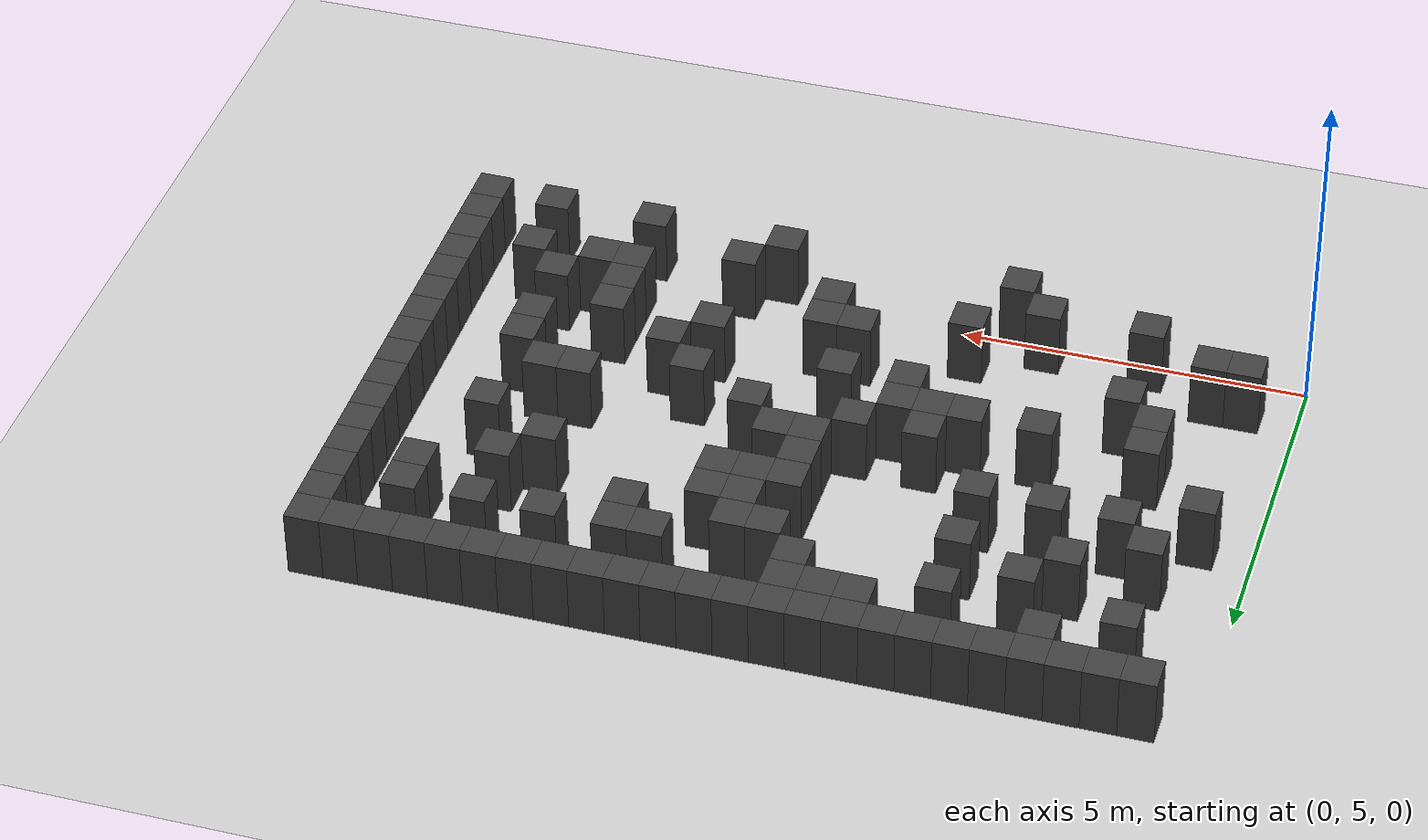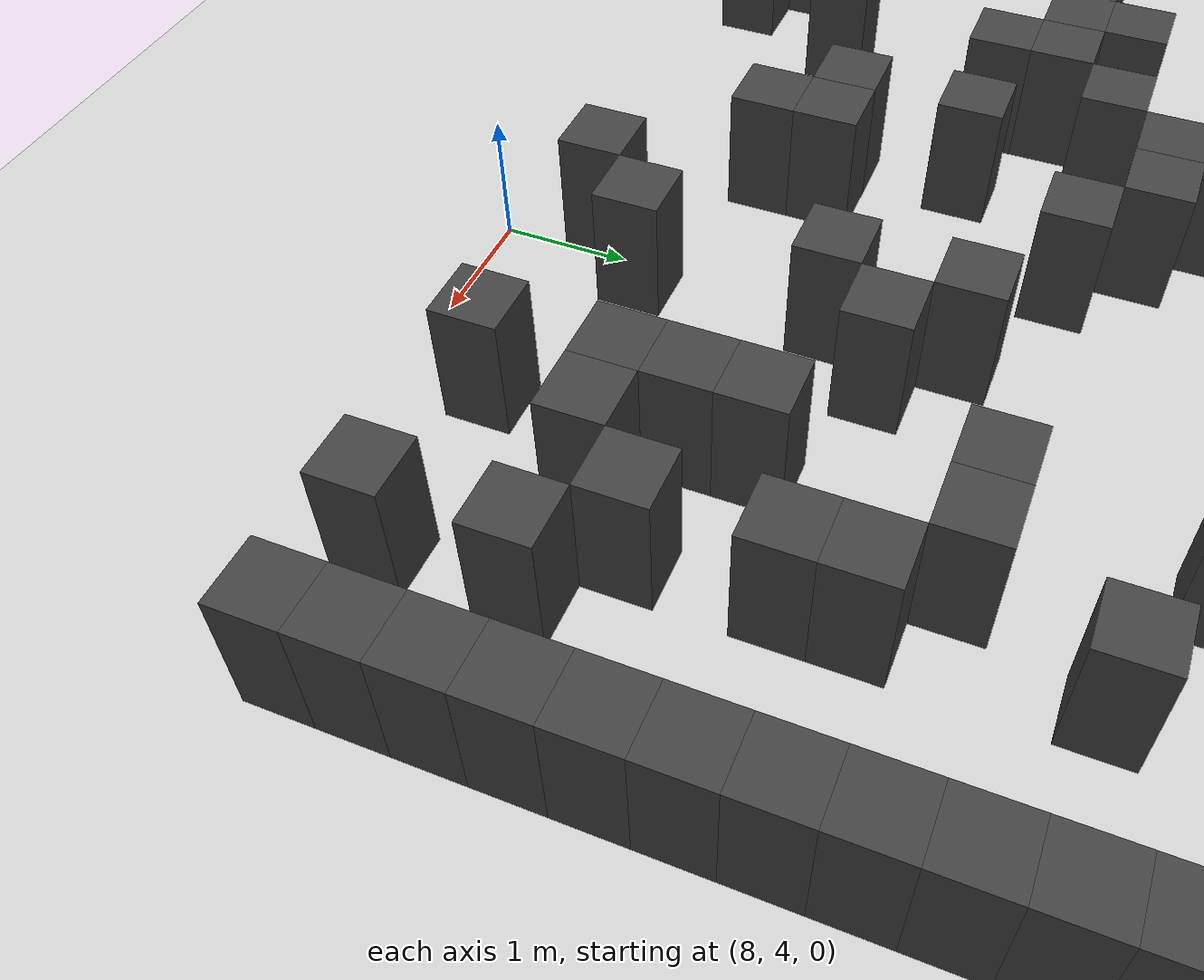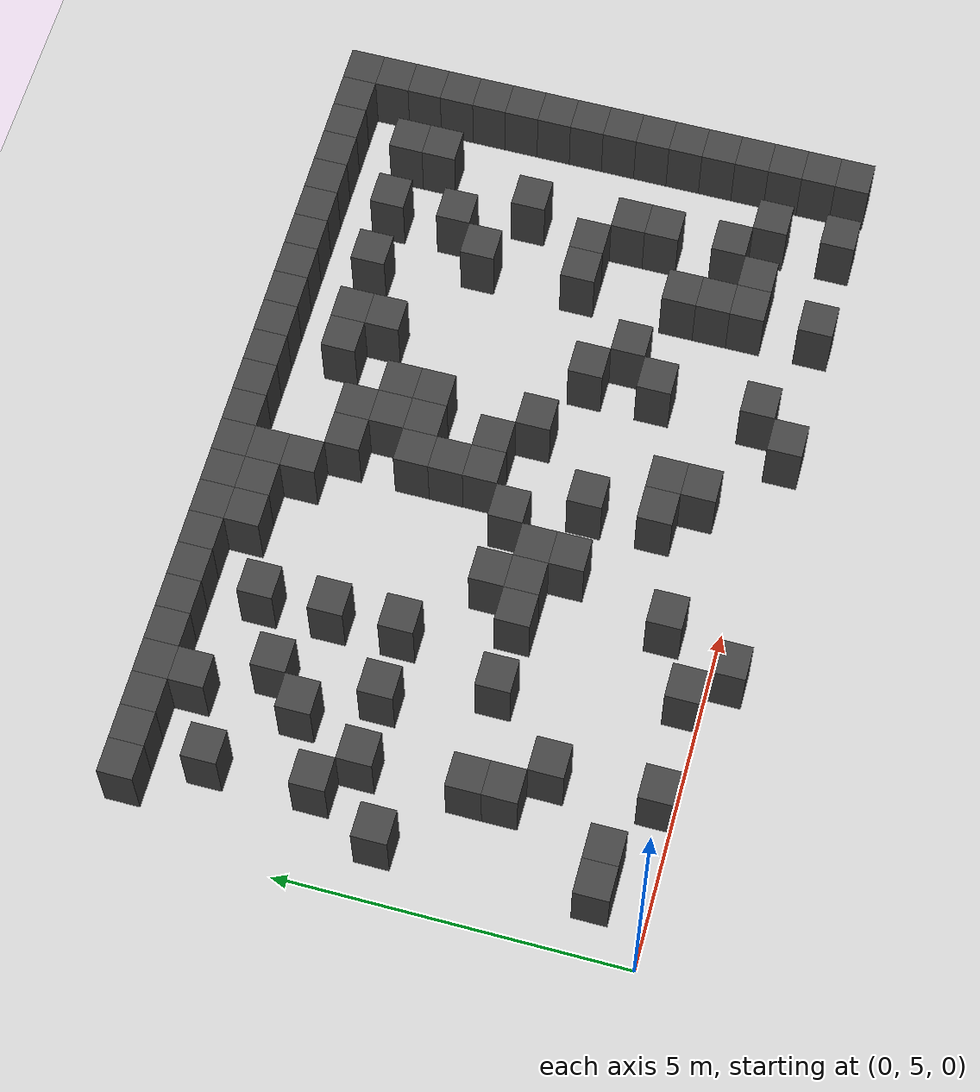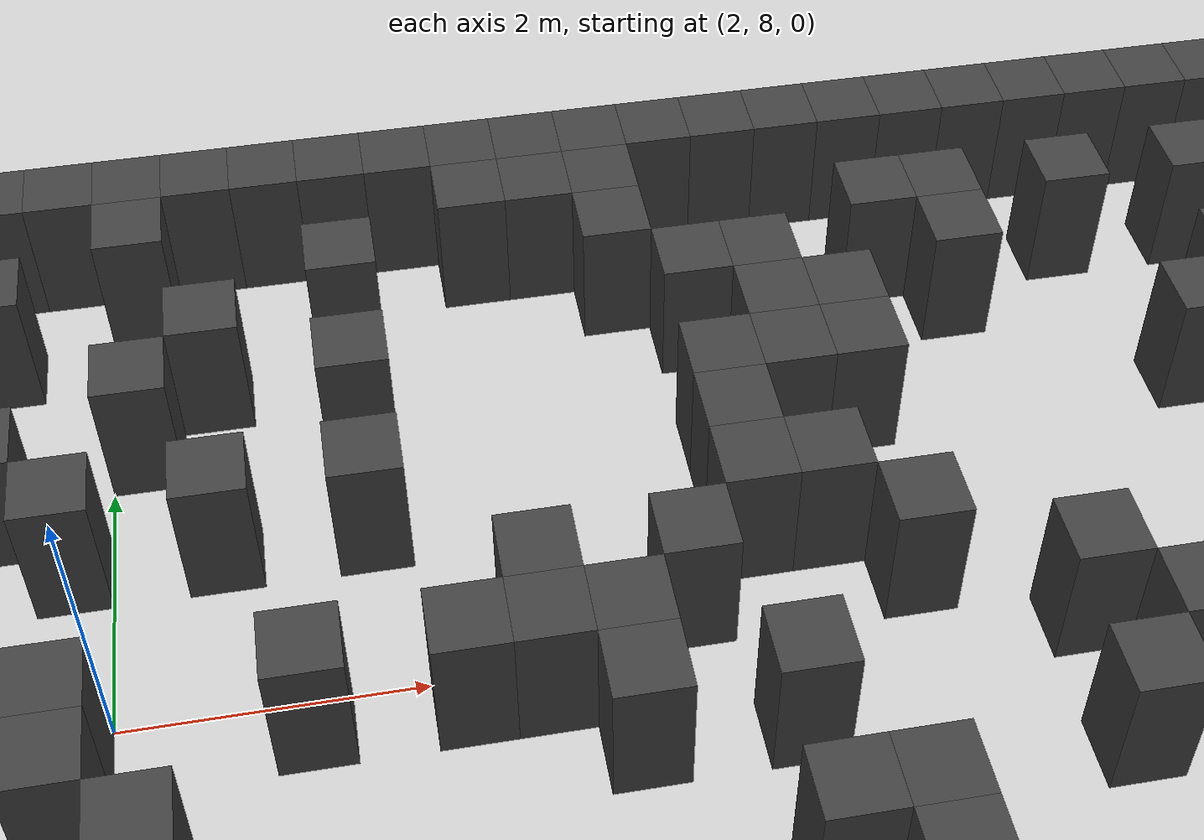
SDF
<sdf version="1.7">
 <world name="map_4226">
  <model name="ground_plane">
   <static>true</static>
   <link name="link">
    <collision name="collision">
     <geometry><plane><normal>0 0 1</normal><size>200 200</size></plane></geometry>
    </collision>
    <visual name="visual">
     <geometry><plane><normal>0 0 1</normal><size>200 200</size></plane></geometry>
     <material><ambient>0.8 0.8 0.8 1</ambient><diffuse>0.8 0.8 0.8 1</diffuse></material>
    </visual>
   </link>
  </model>
  <model name="maze_environment">
   <static>true</static>
   <link name="wall_26">
    <pose>0.750 12.250 0.500 0 0 0</pose>
    <collision name="col"><geometry><box><size>0.5 0.5 1.0</size></box></geometry></collision>
    <visual name="vis">
     <geometry><box><size>0.5 0.5 1.0</size></box></geometry>
     <material><ambient>0.15 0.15 0.15 1</ambient><diffuse>0.25 0.25 0.25 1</diffuse></material>
    </visual>
   </link>
   <link name="wall_27">
    <pose>1.250 12.250 0.500 0 0 0</pose>
    <collision name="col"><geometry><box><size>0.5 0.5 1.0</size></box></geometry></collision>
    <visual name="vis">
     <geometry><box><size>0.5 0.5 1.0</size></box></geometry>
     <material><ambient>0.15 0.15 0.15 1</ambient><diffuse>0.25 0.25 0.25 1</diffuse></material>
    </visual>
   </link>
   <link name="wall_28">
    <pose>1.750 12.250 0.500 0 0 0</pose>
    <collision name="col"><geometry><box><size>0.5 0.5 1.0</size></box></geometry></collision>
    <visual name="vis">
     <geometry><box><size>0.5 0.5 1.0</size></box></geometry>
     <material><ambient>0.15 0.15 0.15 1</ambient><diffuse>0.25 0.25 0.25 1</diffuse></material>
    </visual>
   </link>
   <link name="wall_29">
    <pose>2.250 12.250 0.500 0 0 0</pose>
    <collision name="col"><geometry><box><size>0.5 0.5 1.0</size></box></geometry></collision>
    <visual name="vis">
     <geometry><box><size>0.5 0.5 1.0</size></box></geometry>
     <material><ambient>0.15 0.15 0.15 1</ambient><diffuse>0.25 0.25 0.25 1</diffuse></material>
    </visual>
   </link>
   <link name="wall_30">
    <pose>2.750 12.250 0.500 0 0 0</pose>
    <collision name="col"><geometry><box><size>0.5 0.5 1.0</size></box></geometry></collision>
    <visual name="vis">
     <geometry><box><size>0.5 0.5 1.0</size></box></geometry>
     <material><ambient>0.15 0.15 0.15 1</ambient><diffuse>0.25 0.25 0.25 1</diffuse></material>
    </visual>
   </link>
   <link name="wall_31">
    <pose>3.250 12.250 0.500 0 0 0</pose>
    <collision name="col"><geometry><box><size>0.5 0.5 1.0</size></box></geometry></collision>
    <visual name="vis">
     <geometry><box><size>0.5 0.5 1.0</size></box></geometry>
     <material><ambient>0.15 0.15 0.15 1</ambient><diffuse>0.25 0.25 0.25 1</diffuse></material>
    </visual>
   </link>
   <link name="wall_32">
    <pose>3.750 12.250 0.500 0 0 0</pose>
    <collision name="col"><geometry><box><size>0.5 0.5 1.0</size></box></geometry></collision>
    <visual name="vis">
     <geometry><box><size>0.5 0.5 1.0</size></box></geometry>
     <material><ambient>0.15 0.15 0.15 1</ambient><diffuse>0.25 0.25 0.25 1</diffuse></material>
    </visual>
   </link>
   <link name="wall_33">
    <pose>4.250 12.250 0.500 0 0 0</pose>
    <collision name="col"><geometry><box><size>0.5 0.5 1.0</size></box></geometry></collision>
    <visual name="vis">
     <geometry><box><size>0.5 0.5 1.0</size></box></geometry>
     <material><ambient>0.15 0.15 0.15 1</ambient><diffuse>0.25 0.25 0.25 1</diffuse></material>
    </visual>
   </link>
   <link name="wall_34">
    <pose>4.750 12.250 0.500 0 0 0</pose>
    <collision name="col"><geometry><box><size>0.5 0.5 1.0</size></box></geometry></collision>
    <visual name="vis">
     <geometry><box><size>0.5 0.5 1.0</size></box></geometry>
     <material><ambient>0.15 0.15 0.15 1</ambient><diffuse>0.25 0.25 0.25 1</diffuse></material>
    </visual>
   </link>
   <link name="wall_35">
    <pose>5.250 12.250 0.500 0 0 0</pose>
    <collision name="col"><geometry><box><size>0.5 0.5 1.0</size></box></geometry></collision>
    <visual name="vis">
     <geometry><box><size>0.5 0.5 1.0</size></box></geometry>
     <material><ambient>0.15 0.15 0.15 1</ambient><diffuse>0.25 0.25 0.25 1</diffuse></material>
    </visual>
   </link>
   <link name="wall_36">
    <pose>5.750 12.250 0.500 0 0 0</pose>
    <collision name="col"><geometry><box><size>0.5 0.5 1.0</size></box></geometry></collision>
    <visual name="vis">
     <geometry><box><size>0.5 0.5 1.0</size></box></geometry>
     <material><ambient>0.15 0.15 0.15 1</ambient><diffuse>0.25 0.25 0.25 1</diffuse></material>
    </visual>
   </link>
   <link name="wall_37">
    <pose>6.250 12.250 0.500 0 0 0</pose>
    <collision name="col"><geometry><box><size>0.5 0.5 1.0</size></box></geometry></collision>
    <visual name="vis">
     <geometry><box><size>0.5 0.5 1.0</size></box></geometry>
     <material><ambient>0.15 0.15 0.15 1</ambient><diffuse>0.25 0.25 0.25 1</diffuse></material>
    </visual>
   </link>
   <link name="wall_38">
    <pose>6.750 12.250 0.500 0 0 0</pose>
    <collision name="col"><geometry><box><size>0.5 0.5 1.0</size></box></geometry></collision>
    <visual name="vis">
     <geometry><box><size>0.5 0.5 1.0</size></box></geometry>
     <material><ambient>0.15 0.15 0.15 1</ambient><diffuse>0.25 0.25 0.25 1</diffuse></material>
    </visual>
   </link>
   <link name="wall_39">
    <pose>7.250 12.250 0.500 0 0 0</pose>
    <collision name="col"><geometry><box><size>0.5 0.5 1.0</size></box></geometry></collision>
    <visual name="vis">
     <geometry><box><size>0.5 0.5 1.0</size></box></geometry>
     <material><ambient>0.15 0.15 0.15 1</ambient><diffuse>0.25 0.25 0.25 1</diffuse></material>
    </visual>
   </link>
   <link name="wall_40">
    <pose>7.750 12.250 0.500 0 0 0</pose>
    <collision name="col"><geometry><box><size>0.5 0.5 1.0</size></box></geometry></collision>
    <visual name="vis">
     <geometry><box><size>0.5 0.5 1.0</size></box></geometry>
     <material><ambient>0.15 0.15 0.15 1</ambient><diffuse>0.25 0.25 0.25 1</diffuse></material>
    </visual>
   </link>
   <link name="wall_41">
    <pose>8.250 12.250 0.500 0 0 0</pose>
    <collision name="col"><geometry><box><size>0.5 0.5 1.0</size></box></geometry></collision>
    <visual name="vis">
     <geometry><box><size>0.5 0.5 1.0</size></box></geometry>
     <material><ambient>0.15 0.15 0.15 1</ambient><diffuse>0.25 0.25 0.25 1</diffuse></material>
    </visual>
   </link>
   <link name="wall_42">
    <pose>8.750 12.250 0.500 0 0 0</pose>
    <collision name="col"><geometry><box><size>0.5 0.5 1.0</size></box></geometry></collision>
    <visual name="vis">
     <geometry><box><size>0.5 0.5 1.0</size></box></geometry>
     <material><ambient>0.15 0.15 0.15 1</ambient><diffuse>0.25 0.25 0.25 1</diffuse></material>
    </visual>
   </link>
   <link name="wall_43">
    <pose>9.250 12.250 0.500 0 0 0</pose>
    <collision name="col"><geometry><box><size>0.5 0.5 1.0</size></box></geometry></collision>
    <visual name="vis">
     <geometry><box><size>0.5 0.5 1.0</size></box></geometry>
     <material><ambient>0.15 0.15 0.15 1</ambient><diffuse>0.25 0.25 0.25 1</diffuse></material>
    </visual>
   </link>
   <link name="wall_44">
    <pose>9.750 12.250 0.500 0 0 0</pose>
    <collision name="col"><geometry><box><size>0.5 0.5 1.0</size></box></geometry></collision>
    <visual name="vis">
     <geometry><box><size>0.5 0.5 1.0</size></box></geometry>
     <material><ambient>0.15 0.15 0.15 1</ambient><diffuse>0.25 0.25 0.25 1</diffuse></material>
    </visual>
   </link>
   <link name="wall_45">
    <pose>10.250 12.250 0.500 0 0 0</pose>
    <collision name="col"><geometry><box><size>0.5 0.5 1.0</size></box></geometry></collision>
    <visual name="vis">
     <geometry><box><size>0.5 0.5 1.0</size></box></geometry>
     <material><ambient>0.15 0.15 0.15 1</ambient><diffuse>0.25 0.25 0.25 1</diffuse></material>
    </visual>
   </link>
   <link name="wall_46">
    <pose>10.750 12.250 0.500 0 0 0</pose>
    <collision name="col"><geometry><box><size>0.5 0.5 1.0</size></box></geometry></collision>
    <visual name="vis">
     <geometry><box><size>0.5 0.5 1.0</size></box></geometry>
     <material><ambient>0.15 0.15 0.15 1</ambient><diffuse>0.25 0.25 0.25 1</diffuse></material>
    </visual>
   </link>
   <link name="wall_47">
    <pose>11.250 12.250 0.500 0 0 0</pose>
    <collision name="col"><geometry><box><size>0.5 0.5 1.0</size></box></geometry></collision>
    <visual name="vis">
     <geometry><box><size>0.5 0.5 1.0</size></box></geometry>
     <material><ambient>0.15 0.15 0.15 1</ambient><diffuse>0.25 0.25 0.25 1</diffuse></material>
    </visual>
   </link>
   <link name="wall_48">
    <pose>11.750 12.250 0.500 0 0 0</pose>
    <collision name="col"><geometry><box><size>0.5 0.5 1.0</size></box></geometry></collision>
    <visual name="vis">
     <geometry><box><size>0.5 0.5 1.0</size></box></geometry>
     <material><ambient>0.15 0.15 0.15 1</ambient><diffuse>0.25 0.25 0.25 1</diffuse></material>
    </visual>
   </link>
   <link name="wall_49">
    <pose>12.250 12.250 0.500 0 0 0</pose>
    <collision name="col"><geometry><box><size>0.5 0.5 1.0</size></box></geometry></collision>
    <visual name="vis">
     <geometry><box><size>0.5 0.5 1.0</size></box></geometry>
     <material><ambient>0.15 0.15 0.15 1</ambient><diffuse>0.25 0.25 0.25 1</diffuse></material>
    </visual>
   </link>
   <link name="wall_53">
    <pose>2.250 11.750 0.500 0 0 0</pose>
    <collision name="col"><geometry><box><size>0.5 0.5 1.0</size></box></geometry></collision>
    <visual name="vis">
     <geometry><box><size>0.5 0.5 1.0</size></box></geometry>
     <material><ambient>0.15 0.15 0.15 1</ambient><diffuse>0.25 0.25 0.25 1</diffuse></material>
    </visual>
   </link>
   <link name="wall_54">
    <pose>4.750 11.750 0.500 0 0 0</pose>
    <collision name="col"><geometry><box><size>0.5 0.5 1.0</size></box></geometry></collision>
    <visual name="vis">
     <geometry><box><size>0.5 0.5 1.0</size></box></geometry>
     <material><ambient>0.15 0.15 0.15 1</ambient><diffuse>0.25 0.25 0.25 1</diffuse></material>
    </visual>
   </link>
   <link name="wall_55">
    <pose>5.250 11.750 0.500 0 0 0</pose>
    <collision name="col"><geometry><box><size>0.5 0.5 1.0</size></box></geometry></collision>
    <visual name="vis">
     <geometry><box><size>0.5 0.5 1.0</size></box></geometry>
     <material><ambient>0.15 0.15 0.15 1</ambient><diffuse>0.25 0.25 0.25 1</diffuse></material>
    </visual>
   </link>
   <link name="wall_56">
    <pose>5.750 11.750 0.500 0 0 0</pose>
    <collision name="col"><geometry><box><size>0.5 0.5 1.0</size></box></geometry></collision>
    <visual name="vis">
     <geometry><box><size>0.5 0.5 1.0</size></box></geometry>
     <material><ambient>0.15 0.15 0.15 1</ambient><diffuse>0.25 0.25 0.25 1</diffuse></material>
    </visual>
   </link>
   <link name="wall_57">
    <pose>12.250 11.750 0.500 0 0 0</pose>
    <collision name="col"><geometry><box><size>0.5 0.5 1.0</size></box></geometry></collision>
    <visual name="vis">
     <geometry><box><size>0.5 0.5 1.0</size></box></geometry>
     <material><ambient>0.15 0.15 0.15 1</ambient><diffuse>0.25 0.25 0.25 1</diffuse></material>
    </visual>
   </link>
   <link name="wall_64">
    <pose>1.250 11.250 0.500 0 0 0</pose>
    <collision name="col"><geometry><box><size>0.5 0.5 1.0</size></box></geometry></collision>
    <visual name="vis">
     <geometry><box><size>0.5 0.5 1.0</size></box></geometry>
     <material><ambient>0.15 0.15 0.15 1</ambient><diffuse>0.25 0.25 0.25 1</diffuse></material>
    </visual>
   </link>
   <link name="wall_65">
    <pose>3.750 11.250 0.500 0 0 0</pose>
    <collision name="col"><geometry><box><size>0.5 0.5 1.0</size></box></geometry></collision>
    <visual name="vis">
     <geometry><box><size>0.5 0.5 1.0</size></box></geometry>
     <material><ambient>0.15 0.15 0.15 1</ambient><diffuse>0.25 0.25 0.25 1</diffuse></material>
    </visual>
   </link>
   <link name="wall_66">
    <pose>5.750 11.250 0.500 0 0 0</pose>
    <collision name="col"><geometry><box><size>0.5 0.5 1.0</size></box></geometry></collision>
    <visual name="vis">
     <geometry><box><size>0.5 0.5 1.0</size></box></geometry>
     <material><ambient>0.15 0.15 0.15 1</ambient><diffuse>0.25 0.25 0.25 1</diffuse></material>
    </visual>
   </link>
   <link name="wall_67">
    <pose>7.750 11.250 0.500 0 0 0</pose>
    <collision name="col"><geometry><box><size>0.5 0.5 1.0</size></box></geometry></collision>
    <visual name="vis">
     <geometry><box><size>0.5 0.5 1.0</size></box></geometry>
     <material><ambient>0.15 0.15 0.15 1</ambient><diffuse>0.25 0.25 0.25 1</diffuse></material>
    </visual>
   </link>
   <link name="wall_68">
    <pose>8.250 11.250 0.500 0 0 0</pose>
    <collision name="col"><geometry><box><size>0.5 0.5 1.0</size></box></geometry></collision>
    <visual name="vis">
     <geometry><box><size>0.5 0.5 1.0</size></box></geometry>
     <material><ambient>0.15 0.15 0.15 1</ambient><diffuse>0.25 0.25 0.25 1</diffuse></material>
    </visual>
   </link>
   <link name="wall_69">
    <pose>9.250 11.250 0.500 0 0 0</pose>
    <collision name="col"><geometry><box><size>0.5 0.5 1.0</size></box></geometry></collision>
    <visual name="vis">
     <geometry><box><size>0.5 0.5 1.0</size></box></geometry>
     <material><ambient>0.15 0.15 0.15 1</ambient><diffuse>0.25 0.25 0.25 1</diffuse></material>
    </visual>
   </link>
   <link name="wall_70">
    <pose>10.250 11.250 0.500 0 0 0</pose>
    <collision name="col"><geometry><box><size>0.5 0.5 1.0</size></box></geometry></collision>
    <visual name="vis">
     <geometry><box><size>0.5 0.5 1.0</size></box></geometry>
     <material><ambient>0.15 0.15 0.15 1</ambient><diffuse>0.25 0.25 0.25 1</diffuse></material>
    </visual>
   </link>
   <link name="wall_71">
    <pose>11.250 11.250 0.500 0 0 0</pose>
    <collision name="col"><geometry><box><size>0.5 0.5 1.0</size></box></geometry></collision>
    <visual name="vis">
     <geometry><box><size>0.5 0.5 1.0</size></box></geometry>
     <material><ambient>0.15 0.15 0.15 1</ambient><diffuse>0.25 0.25 0.25 1</diffuse></material>
    </visual>
   </link>
   <link name="wall_72">
    <pose>12.250 11.250 0.500 0 0 0</pose>
    <collision name="col"><geometry><box><size>0.5 0.5 1.0</size></box></geometry></collision>
    <visual name="vis">
     <geometry><box><size>0.5 0.5 1.0</size></box></geometry>
     <material><ambient>0.15 0.15 0.15 1</ambient><diffuse>0.25 0.25 0.25 1</diffuse></material>
    </visual>
   </link>
   <link name="wall_78">
    <pose>2.750 10.750 0.500 0 0 0</pose>
    <collision name="col"><geometry><box><size>0.5 0.5 1.0</size></box></geometry></collision>
    <visual name="vis">
     <geometry><box><size>0.5 0.5 1.0</size></box></geometry>
     <material><ambient>0.15 0.15 0.15 1</ambient><diffuse>0.25 0.25 0.25 1</diffuse></material>
    </visual>
   </link>
   <link name="wall_79">
    <pose>6.250 10.750 0.500 0 0 0</pose>
    <collision name="col"><geometry><box><size>0.5 0.5 1.0</size></box></geometry></collision>
    <visual name="vis">
     <geometry><box><size>0.5 0.5 1.0</size></box></geometry>
     <material><ambient>0.15 0.15 0.15 1</ambient><diffuse>0.25 0.25 0.25 1</diffuse></material>
    </visual>
   </link>
   <link name="wall_80">
    <pose>6.750 10.750 0.500 0 0 0</pose>
    <collision name="col"><geometry><box><size>0.5 0.5 1.0</size></box></geometry></collision>
    <visual name="vis">
     <geometry><box><size>0.5 0.5 1.0</size></box></geometry>
     <material><ambient>0.15 0.15 0.15 1</ambient><diffuse>0.25 0.25 0.25 1</diffuse></material>
    </visual>
   </link>
   <link name="wall_81">
    <pose>8.250 10.750 0.500 0 0 0</pose>
    <collision name="col"><geometry><box><size>0.5 0.5 1.0</size></box></geometry></collision>
    <visual name="vis">
     <geometry><box><size>0.5 0.5 1.0</size></box></geometry>
     <material><ambient>0.15 0.15 0.15 1</ambient><diffuse>0.25 0.25 0.25 1</diffuse></material>
    </visual>
   </link>
   <link name="wall_82">
    <pose>11.250 10.750 0.500 0 0 0</pose>
    <collision name="col"><geometry><box><size>0.5 0.5 1.0</size></box></geometry></collision>
    <visual name="vis">
     <geometry><box><size>0.5 0.5 1.0</size></box></geometry>
     <material><ambient>0.15 0.15 0.15 1</ambient><diffuse>0.25 0.25 0.25 1</diffuse></material>
    </visual>
   </link>
   <link name="wall_83">
    <pose>12.250 10.750 0.500 0 0 0</pose>
    <collision name="col"><geometry><box><size>0.5 0.5 1.0</size></box></geometry></collision>
    <visual name="vis">
     <geometry><box><size>0.5 0.5 1.0</size></box></geometry>
     <material><ambient>0.15 0.15 0.15 1</ambient><diffuse>0.25 0.25 0.25 1</diffuse></material>
    </visual>
   </link>
   <link name="wall_87">
    <pose>2.250 10.250 0.500 0 0 0</pose>
    <collision name="col"><geometry><box><size>0.5 0.5 1.0</size></box></geometry></collision>
    <visual name="vis">
     <geometry><box><size>0.5 0.5 1.0</size></box></geometry>
     <material><ambient>0.15 0.15 0.15 1</ambient><diffuse>0.25 0.25 0.25 1</diffuse></material>
    </visual>
   </link>
   <link name="wall_88">
    <pose>3.750 10.250 0.500 0 0 0</pose>
    <collision name="col"><geometry><box><size>0.5 0.5 1.0</size></box></geometry></collision>
    <visual name="vis">
     <geometry><box><size>0.5 0.5 1.0</size></box></geometry>
     <material><ambient>0.15 0.15 0.15 1</ambient><diffuse>0.25 0.25 0.25 1</diffuse></material>
    </visual>
   </link>
   <link name="wall_89">
    <pose>6.750 10.250 0.500 0 0 0</pose>
    <collision name="col"><geometry><box><size>0.5 0.5 1.0</size></box></geometry></collision>
    <visual name="vis">
     <geometry><box><size>0.5 0.5 1.0</size></box></geometry>
     <material><ambient>0.15 0.15 0.15 1</ambient><diffuse>0.25 0.25 0.25 1</diffuse></material>
    </visual>
   </link>
   <link name="wall_90">
    <pose>7.250 10.250 0.500 0 0 0</pose>
    <collision name="col"><geometry><box><size>0.5 0.5 1.0</size></box></geometry></collision>
    <visual name="vis">
     <geometry><box><size>0.5 0.5 1.0</size></box></geometry>
     <material><ambient>0.15 0.15 0.15 1</ambient><diffuse>0.25 0.25 0.25 1</diffuse></material>
    </visual>
   </link>
   <link name="wall_91">
    <pose>10.250 10.250 0.500 0 0 0</pose>
    <collision name="col"><geometry><box><size>0.5 0.5 1.0</size></box></geometry></collision>
    <visual name="vis">
     <geometry><box><size>0.5 0.5 1.0</size></box></geometry>
     <material><ambient>0.15 0.15 0.15 1</ambient><diffuse>0.25 0.25 0.25 1</diffuse></material>
    </visual>
   </link>
   <link name="wall_92">
    <pose>12.250 10.250 0.500 0 0 0</pose>
    <collision name="col"><geometry><box><size>0.5 0.5 1.0</size></box></geometry></collision>
    <visual name="vis">
     <geometry><box><size>0.5 0.5 1.0</size></box></geometry>
     <material><ambient>0.15 0.15 0.15 1</ambient><diffuse>0.25 0.25 0.25 1</diffuse></material>
    </visual>
   </link>
   <link name="wall_99">
    <pose>1.250 9.750 0.500 0 0 0</pose>
    <collision name="col"><geometry><box><size>0.5 0.5 1.0</size></box></geometry></collision>
    <visual name="vis">
     <geometry><box><size>0.5 0.5 1.0</size></box></geometry>
     <material><ambient>0.15 0.15 0.15 1</ambient><diffuse>0.25 0.25 0.25 1</diffuse></material>
    </visual>
   </link>
   <link name="wall_100">
    <pose>6.250 9.750 0.500 0 0 0</pose>
    <collision name="col"><geometry><box><size>0.5 0.5 1.0</size></box></geometry></collision>
    <visual name="vis">
     <geometry><box><size>0.5 0.5 1.0</size></box></geometry>
     <material><ambient>0.15 0.15 0.15 1</ambient><diffuse>0.25 0.25 0.25 1</diffuse></material>
    </visual>
   </link>
   <link name="wall_101">
    <pose>6.750 9.750 0.500 0 0 0</pose>
    <collision name="col"><geometry><box><size>0.5 0.5 1.0</size></box></geometry></collision>
    <visual name="vis">
     <geometry><box><size>0.5 0.5 1.0</size></box></geometry>
     <material><ambient>0.15 0.15 0.15 1</ambient><diffuse>0.25 0.25 0.25 1</diffuse></material>
    </visual>
   </link>
   <link name="wall_102">
    <pose>7.250 9.750 0.500 0 0 0</pose>
    <collision name="col"><geometry><box><size>0.5 0.5 1.0</size></box></geometry></collision>
    <visual name="vis">
     <geometry><box><size>0.5 0.5 1.0</size></box></geometry>
     <material><ambient>0.15 0.15 0.15 1</ambient><diffuse>0.25 0.25 0.25 1</diffuse></material>
    </visual>
   </link>
   <link name="wall_103">
    <pose>9.750 9.750 0.500 0 0 0</pose>
    <collision name="col"><geometry><box><size>0.5 0.5 1.0</size></box></geometry></collision>
    <visual name="vis">
     <geometry><box><size>0.5 0.5 1.0</size></box></geometry>
     <material><ambient>0.15 0.15 0.15 1</ambient><diffuse>0.25 0.25 0.25 1</diffuse></material>
    </visual>
   </link>
   <link name="wall_104">
    <pose>12.250 9.750 0.500 0 0 0</pose>
    <collision name="col"><geometry><box><size>0.5 0.5 1.0</size></box></geometry></collision>
    <visual name="vis">
     <geometry><box><size>0.5 0.5 1.0</size></box></geometry>
     <material><ambient>0.15 0.15 0.15 1</ambient><diffuse>0.25 0.25 0.25 1</diffuse></material>
    </visual>
   </link>
   <link name="wall_108">
    <pose>1.750 9.250 0.500 0 0 0</pose>
    <collision name="col"><geometry><box><size>0.5 0.5 1.0</size></box></geometry></collision>
    <visual name="vis">
     <geometry><box><size>0.5 0.5 1.0</size></box></geometry>
     <material><ambient>0.15 0.15 0.15 1</ambient><diffuse>0.25 0.25 0.25 1</diffuse></material>
    </visual>
   </link>
   <link name="wall_109">
    <pose>2.750 9.250 0.500 0 0 0</pose>
    <collision name="col"><geometry><box><size>0.5 0.5 1.0</size></box></geometry></collision>
    <visual name="vis">
     <geometry><box><size>0.5 0.5 1.0</size></box></geometry>
     <material><ambient>0.15 0.15 0.15 1</ambient><diffuse>0.25 0.25 0.25 1</diffuse></material>
    </visual>
   </link>
   <link name="wall_110">
    <pose>3.750 9.250 0.500 0 0 0</pose>
    <collision name="col"><geometry><box><size>0.5 0.5 1.0</size></box></geometry></collision>
    <visual name="vis">
     <geometry><box><size>0.5 0.5 1.0</size></box></geometry>
     <material><ambient>0.15 0.15 0.15 1</ambient><diffuse>0.25 0.25 0.25 1</diffuse></material>
    </visual>
   </link>
   <link name="wall_111">
    <pose>6.250 9.250 0.500 0 0 0</pose>
    <collision name="col"><geometry><box><size>0.5 0.5 1.0</size></box></geometry></collision>
    <visual name="vis">
     <geometry><box><size>0.5 0.5 1.0</size></box></geometry>
     <material><ambient>0.15 0.15 0.15 1</ambient><diffuse>0.25 0.25 0.25 1</diffuse></material>
    </visual>
   </link>
   <link name="wall_112">
    <pose>10.750 9.250 0.500 0 0 0</pose>
    <collision name="col"><geometry><box><size>0.5 0.5 1.0</size></box></geometry></collision>
    <visual name="vis">
     <geometry><box><size>0.5 0.5 1.0</size></box></geometry>
     <material><ambient>0.15 0.15 0.15 1</ambient><diffuse>0.25 0.25 0.25 1</diffuse></material>
    </visual>
   </link>
   <link name="wall_113">
    <pose>12.250 9.250 0.500 0 0 0</pose>
    <collision name="col"><geometry><box><size>0.5 0.5 1.0</size></box></geometry></collision>
    <visual name="vis">
     <geometry><box><size>0.5 0.5 1.0</size></box></geometry>
     <material><ambient>0.15 0.15 0.15 1</ambient><diffuse>0.25 0.25 0.25 1</diffuse></material>
    </visual>
   </link>
   <link name="wall_122">
    <pose>0.750 8.750 0.500 0 0 0</pose>
    <collision name="col"><geometry><box><size>0.5 0.5 1.0</size></box></geometry></collision>
    <visual name="vis">
     <geometry><box><size>0.5 0.5 1.0</size></box></geometry>
     <material><ambient>0.15 0.15 0.15 1</ambient><diffuse>0.25 0.25 0.25 1</diffuse></material>
    </visual>
   </link>
   <link name="wall_123">
    <pose>6.250 8.750 0.500 0 0 0</pose>
    <collision name="col"><geometry><box><size>0.5 0.5 1.0</size></box></geometry></collision>
    <visual name="vis">
     <geometry><box><size>0.5 0.5 1.0</size></box></geometry>
     <material><ambient>0.15 0.15 0.15 1</ambient><diffuse>0.25 0.25 0.25 1</diffuse></material>
    </visual>
   </link>
   <link name="wall_124">
    <pose>6.750 8.750 0.500 0 0 0</pose>
    <collision name="col"><geometry><box><size>0.5 0.5 1.0</size></box></geometry></collision>
    <visual name="vis">
     <geometry><box><size>0.5 0.5 1.0</size></box></geometry>
     <material><ambient>0.15 0.15 0.15 1</ambient><diffuse>0.25 0.25 0.25 1</diffuse></material>
    </visual>
   </link>
   <link name="wall_125">
    <pose>12.250 8.750 0.500 0 0 0</pose>
    <collision name="col"><geometry><box><size>0.5 0.5 1.0</size></box></geometry></collision>
    <visual name="vis">
     <geometry><box><size>0.5 0.5 1.0</size></box></geometry>
     <material><ambient>0.15 0.15 0.15 1</ambient><diffuse>0.25 0.25 0.25 1</diffuse></material>
    </visual>
   </link>
   <link name="wall_132">
    <pose>4.750 8.250 0.500 0 0 0</pose>
    <collision name="col"><geometry><box><size>0.5 0.5 1.0</size></box></geometry></collision>
    <visual name="vis">
     <geometry><box><size>0.5 0.5 1.0</size></box></geometry>
     <material><ambient>0.15 0.15 0.15 1</ambient><diffuse>0.25 0.25 0.25 1</diffuse></material>
    </visual>
   </link>
   <link name="wall_133">
    <pose>5.750 8.250 0.500 0 0 0</pose>
    <collision name="col"><geometry><box><size>0.5 0.5 1.0</size></box></geometry></collision>
    <visual name="vis">
     <geometry><box><size>0.5 0.5 1.0</size></box></geometry>
     <material><ambient>0.15 0.15 0.15 1</ambient><diffuse>0.25 0.25 0.25 1</diffuse></material>
    </visual>
   </link>
   <link name="wall_134">
    <pose>7.250 8.250 0.500 0 0 0</pose>
    <collision name="col"><geometry><box><size>0.5 0.5 1.0</size></box></geometry></collision>
    <visual name="vis">
     <geometry><box><size>0.5 0.5 1.0</size></box></geometry>
     <material><ambient>0.15 0.15 0.15 1</ambient><diffuse>0.25 0.25 0.25 1</diffuse></material>
    </visual>
   </link>
   <link name="wall_135">
    <pose>9.750 8.250 0.500 0 0 0</pose>
    <collision name="col"><geometry><box><size>0.5 0.5 1.0</size></box></geometry></collision>
    <visual name="vis">
     <geometry><box><size>0.5 0.5 1.0</size></box></geometry>
     <material><ambient>0.15 0.15 0.15 1</ambient><diffuse>0.25 0.25 0.25 1</diffuse></material>
    </visual>
   </link>
   <link name="wall_136">
    <pose>10.250 8.250 0.500 0 0 0</pose>
    <collision name="col"><geometry><box><size>0.5 0.5 1.0</size></box></geometry></collision>
    <visual name="vis">
     <geometry><box><size>0.5 0.5 1.0</size></box></geometry>
     <material><ambient>0.15 0.15 0.15 1</ambient><diffuse>0.25 0.25 0.25 1</diffuse></material>
    </visual>
   </link>
   <link name="wall_137">
    <pose>12.250 8.250 0.500 0 0 0</pose>
    <collision name="col"><geometry><box><size>0.5 0.5 1.0</size></box></geometry></collision>
    <visual name="vis">
     <geometry><box><size>0.5 0.5 1.0</size></box></geometry>
     <material><ambient>0.15 0.15 0.15 1</ambient><diffuse>0.25 0.25 0.25 1</diffuse></material>
    </visual>
   </link>
   <link name="wall_145">
    <pose>1.750 7.750 0.500 0 0 0</pose>
    <collision name="col"><geometry><box><size>0.5 0.5 1.0</size></box></geometry></collision>
    <visual name="vis">
     <geometry><box><size>0.5 0.5 1.0</size></box></geometry>
     <material><ambient>0.15 0.15 0.15 1</ambient><diffuse>0.25 0.25 0.25 1</diffuse></material>
    </visual>
   </link>
   <link name="wall_146">
    <pose>3.250 7.750 0.500 0 0 0</pose>
    <collision name="col"><geometry><box><size>0.5 0.5 1.0</size></box></geometry></collision>
    <visual name="vis">
     <geometry><box><size>0.5 0.5 1.0</size></box></geometry>
     <material><ambient>0.15 0.15 0.15 1</ambient><diffuse>0.25 0.25 0.25 1</diffuse></material>
    </visual>
   </link>
   <link name="wall_147">
    <pose>4.250 7.750 0.500 0 0 0</pose>
    <collision name="col"><geometry><box><size>0.5 0.5 1.0</size></box></geometry></collision>
    <visual name="vis">
     <geometry><box><size>0.5 0.5 1.0</size></box></geometry>
     <material><ambient>0.15 0.15 0.15 1</ambient><diffuse>0.25 0.25 0.25 1</diffuse></material>
    </visual>
   </link>
   <link name="wall_148">
    <pose>4.750 7.750 0.500 0 0 0</pose>
    <collision name="col"><geometry><box><size>0.5 0.5 1.0</size></box></geometry></collision>
    <visual name="vis">
     <geometry><box><size>0.5 0.5 1.0</size></box></geometry>
     <material><ambient>0.15 0.15 0.15 1</ambient><diffuse>0.25 0.25 0.25 1</diffuse></material>
    </visual>
   </link>
   <link name="wall_149">
    <pose>5.250 7.750 0.500 0 0 0</pose>
    <collision name="col"><geometry><box><size>0.5 0.5 1.0</size></box></geometry></collision>
    <visual name="vis">
     <geometry><box><size>0.5 0.5 1.0</size></box></geometry>
     <material><ambient>0.15 0.15 0.15 1</ambient><diffuse>0.25 0.25 0.25 1</diffuse></material>
    </visual>
   </link>
   <link name="wall_150">
    <pose>8.250 7.750 0.500 0 0 0</pose>
    <collision name="col"><geometry><box><size>0.5 0.5 1.0</size></box></geometry></collision>
    <visual name="vis">
     <geometry><box><size>0.5 0.5 1.0</size></box></geometry>
     <material><ambient>0.15 0.15 0.15 1</ambient><diffuse>0.25 0.25 0.25 1</diffuse></material>
    </visual>
   </link>
   <link name="wall_151">
    <pose>10.750 7.750 0.500 0 0 0</pose>
    <collision name="col"><geometry><box><size>0.5 0.5 1.0</size></box></geometry></collision>
    <visual name="vis">
     <geometry><box><size>0.5 0.5 1.0</size></box></geometry>
     <material><ambient>0.15 0.15 0.15 1</ambient><diffuse>0.25 0.25 0.25 1</diffuse></material>
    </visual>
   </link>
   <link name="wall_152">
    <pose>12.250 7.750 0.500 0 0 0</pose>
    <collision name="col"><geometry><box><size>0.5 0.5 1.0</size></box></geometry></collision>
    <visual name="vis">
     <geometry><box><size>0.5 0.5 1.0</size></box></geometry>
     <material><ambient>0.15 0.15 0.15 1</ambient><diffuse>0.25 0.25 0.25 1</diffuse></material>
    </visual>
   </link>
   <link name="wall_163">
    <pose>1.750 7.250 0.500 0 0 0</pose>
    <collision name="col"><geometry><box><size>0.5 0.5 1.0</size></box></geometry></collision>
    <visual name="vis">
     <geometry><box><size>0.5 0.5 1.0</size></box></geometry>
     <material><ambient>0.15 0.15 0.15 1</ambient><diffuse>0.25 0.25 0.25 1</diffuse></material>
    </visual>
   </link>
   <link name="wall_164">
    <pose>5.250 7.250 0.500 0 0 0</pose>
    <collision name="col"><geometry><box><size>0.5 0.5 1.0</size></box></geometry></collision>
    <visual name="vis">
     <geometry><box><size>0.5 0.5 1.0</size></box></geometry>
     <material><ambient>0.15 0.15 0.15 1</ambient><diffuse>0.25 0.25 0.25 1</diffuse></material>
    </visual>
   </link>
   <link name="wall_165">
    <pose>6.250 7.250 0.500 0 0 0</pose>
    <collision name="col"><geometry><box><size>0.5 0.5 1.0</size></box></geometry></collision>
    <visual name="vis">
     <geometry><box><size>0.5 0.5 1.0</size></box></geometry>
     <material><ambient>0.15 0.15 0.15 1</ambient><diffuse>0.25 0.25 0.25 1</diffuse></material>
    </visual>
   </link>
   <link name="wall_166">
    <pose>8.750 7.250 0.500 0 0 0</pose>
    <collision name="col"><geometry><box><size>0.5 0.5 1.0</size></box></geometry></collision>
    <visual name="vis">
     <geometry><box><size>0.5 0.5 1.0</size></box></geometry>
     <material><ambient>0.15 0.15 0.15 1</ambient><diffuse>0.25 0.25 0.25 1</diffuse></material>
    </visual>
   </link>
   <link name="wall_167">
    <pose>10.750 7.250 0.500 0 0 0</pose>
    <collision name="col"><geometry><box><size>0.5 0.5 1.0</size></box></geometry></collision>
    <visual name="vis">
     <geometry><box><size>0.5 0.5 1.0</size></box></geometry>
     <material><ambient>0.15 0.15 0.15 1</ambient><diffuse>0.25 0.25 0.25 1</diffuse></material>
    </visual>
   </link>
   <link name="wall_168">
    <pose>12.250 7.250 0.500 0 0 0</pose>
    <collision name="col"><geometry><box><size>0.5 0.5 1.0</size></box></geometry></collision>
    <visual name="vis">
     <geometry><box><size>0.5 0.5 1.0</size></box></geometry>
     <material><ambient>0.15 0.15 0.15 1</ambient><diffuse>0.25 0.25 0.25 1</diffuse></material>
    </visual>
   </link>
   <link name="wall_177">
    <pose>2.250 6.750 0.500 0 0 0</pose>
    <collision name="col"><geometry><box><size>0.5 0.5 1.0</size></box></geometry></collision>
    <visual name="vis">
     <geometry><box><size>0.5 0.5 1.0</size></box></geometry>
     <material><ambient>0.15 0.15 0.15 1</ambient><diffuse>0.25 0.25 0.25 1</diffuse></material>
    </visual>
   </link>
   <link name="wall_178">
    <pose>8.250 6.750 0.500 0 0 0</pose>
    <collision name="col"><geometry><box><size>0.5 0.5 1.0</size></box></geometry></collision>
    <visual name="vis">
     <geometry><box><size>0.5 0.5 1.0</size></box></geometry>
     <material><ambient>0.15 0.15 0.15 1</ambient><diffuse>0.25 0.25 0.25 1</diffuse></material>
    </visual>
   </link>
   <link name="wall_179">
    <pose>9.750 6.750 0.500 0 0 0</pose>
    <collision name="col"><geometry><box><size>0.5 0.5 1.0</size></box></geometry></collision>
    <visual name="vis">
     <geometry><box><size>0.5 0.5 1.0</size></box></geometry>
     <material><ambient>0.15 0.15 0.15 1</ambient><diffuse>0.25 0.25 0.25 1</diffuse></material>
    </visual>
   </link>
   <link name="wall_180">
    <pose>12.250 6.750 0.500 0 0 0</pose>
    <collision name="col"><geometry><box><size>0.5 0.5 1.0</size></box></geometry></collision>
    <visual name="vis">
     <geometry><box><size>0.5 0.5 1.0</size></box></geometry>
     <material><ambient>0.15 0.15 0.15 1</ambient><diffuse>0.25 0.25 0.25 1</diffuse></material>
    </visual>
   </link>
   <link name="wall_185">
    <pose>6.250 6.250 0.500 0 0 0</pose>
    <collision name="col"><geometry><box><size>0.5 0.5 1.0</size></box></geometry></collision>
    <visual name="vis">
     <geometry><box><size>0.5 0.5 1.0</size></box></geometry>
     <material><ambient>0.15 0.15 0.15 1</ambient><diffuse>0.25 0.25 0.25 1</diffuse></material>
    </visual>
   </link>
   <link name="wall_186">
    <pose>6.750 6.250 0.500 0 0 0</pose>
    <collision name="col"><geometry><box><size>0.5 0.5 1.0</size></box></geometry></collision>
    <visual name="vis">
     <geometry><box><size>0.5 0.5 1.0</size></box></geometry>
     <material><ambient>0.15 0.15 0.15 1</ambient><diffuse>0.25 0.25 0.25 1</diffuse></material>
    </visual>
   </link>
   <link name="wall_187">
    <pose>9.750 6.250 0.500 0 0 0</pose>
    <collision name="col"><geometry><box><size>0.5 0.5 1.0</size></box></geometry></collision>
    <visual name="vis">
     <geometry><box><size>0.5 0.5 1.0</size></box></geometry>
     <material><ambient>0.15 0.15 0.15 1</ambient><diffuse>0.25 0.25 0.25 1</diffuse></material>
    </visual>
   </link>
   <link name="wall_188">
    <pose>10.750 6.250 0.500 0 0 0</pose>
    <collision name="col"><geometry><box><size>0.5 0.5 1.0</size></box></geometry></collision>
    <visual name="vis">
     <geometry><box><size>0.5 0.5 1.0</size></box></geometry>
     <material><ambient>0.15 0.15 0.15 1</ambient><diffuse>0.25 0.25 0.25 1</diffuse></material>
    </visual>
   </link>
   <link name="wall_189">
    <pose>12.250 6.250 0.500 0 0 0</pose>
    <collision name="col"><geometry><box><size>0.5 0.5 1.0</size></box></geometry></collision>
    <visual name="vis">
     <geometry><box><size>0.5 0.5 1.0</size></box></geometry>
     <material><ambient>0.15 0.15 0.15 1</ambient><diffuse>0.25 0.25 0.25 1</diffuse></material>
    </visual>
   </link>
   <link name="wall_198">
    <pose>0.750 5.750 0.500 0 0 0</pose>
    <collision name="col"><geometry><box><size>0.5 0.5 1.0</size></box></geometry></collision>
    <visual name="vis">
     <geometry><box><size>0.5 0.5 1.0</size></box></geometry>
     <material><ambient>0.15 0.15 0.15 1</ambient><diffuse>0.25 0.25 0.25 1</diffuse></material>
    </visual>
   </link>
   <link name="wall_199">
    <pose>1.250 5.750 0.500 0 0 0</pose>
    <collision name="col"><geometry><box><size>0.5 0.5 1.0</size></box></geometry></collision>
    <visual name="vis">
     <geometry><box><size>0.5 0.5 1.0</size></box></geometry>
     <material><ambient>0.15 0.15 0.15 1</ambient><diffuse>0.25 0.25 0.25 1</diffuse></material>
    </visual>
   </link>
   <link name="wall_200">
    <pose>4.750 5.750 0.500 0 0 0</pose>
    <collision name="col"><geometry><box><size>0.5 0.5 1.0</size></box></geometry></collision>
    <visual name="vis">
     <geometry><box><size>0.5 0.5 1.0</size></box></geometry>
     <material><ambient>0.15 0.15 0.15 1</ambient><diffuse>0.25 0.25 0.25 1</diffuse></material>
    </visual>
   </link>
   <link name="wall_201">
    <pose>6.750 5.750 0.500 0 0 0</pose>
    <collision name="col"><geometry><box><size>0.5 0.5 1.0</size></box></geometry></collision>
    <visual name="vis">
     <geometry><box><size>0.5 0.5 1.0</size></box></geometry>
     <material><ambient>0.15 0.15 0.15 1</ambient><diffuse>0.25 0.25 0.25 1</diffuse></material>
    </visual>
   </link>
   <link name="wall_202">
    <pose>9.750 5.750 0.500 0 0 0</pose>
    <collision name="col"><geometry><box><size>0.5 0.5 1.0</size></box></geometry></collision>
    <visual name="vis">
     <geometry><box><size>0.5 0.5 1.0</size></box></geometry>
     <material><ambient>0.15 0.15 0.15 1</ambient><diffuse>0.25 0.25 0.25 1</diffuse></material>
    </visual>
   </link>
   <link name="wall_203">
    <pose>10.250 5.750 0.500 0 0 0</pose>
    <collision name="col"><geometry><box><size>0.5 0.5 1.0</size></box></geometry></collision>
    <visual name="vis">
     <geometry><box><size>0.5 0.5 1.0</size></box></geometry>
     <material><ambient>0.15 0.15 0.15 1</ambient><diffuse>0.25 0.25 0.25 1</diffuse></material>
    </visual>
   </link>
   <link name="wall_204">
    <pose>11.250 5.750 0.500 0 0 0</pose>
    <collision name="col"><geometry><box><size>0.5 0.5 1.0</size></box></geometry></collision>
    <visual name="vis">
     <geometry><box><size>0.5 0.5 1.0</size></box></geometry>
     <material><ambient>0.15 0.15 0.15 1</ambient><diffuse>0.25 0.25 0.25 1</diffuse></material>
    </visual>
   </link>
   <link name="wall_205">
    <pose>12.250 5.750 0.500 0 0 0</pose>
    <collision name="col"><geometry><box><size>0.5 0.5 1.0</size></box></geometry></collision>
    <visual name="vis">
     <geometry><box><size>0.5 0.5 1.0</size></box></geometry>
     <material><ambient>0.15 0.15 0.15 1</ambient><diffuse>0.25 0.25 0.25 1</diffuse></material>
    </visual>
   </link>
   <link name="wall_213">
    <pose>2.250 5.250 0.500 0 0 0</pose>
    <collision name="col"><geometry><box><size>0.5 0.5 1.0</size></box></geometry></collision>
    <visual name="vis">
     <geometry><box><size>0.5 0.5 1.0</size></box></geometry>
     <material><ambient>0.15 0.15 0.15 1</ambient><diffuse>0.25 0.25 0.25 1</diffuse></material>
    </visual>
   </link>
   <link name="wall_214">
    <pose>3.750 5.250 0.500 0 0 0</pose>
    <collision name="col"><geometry><box><size>0.5 0.5 1.0</size></box></geometry></collision>
    <visual name="vis">
     <geometry><box><size>0.5 0.5 1.0</size></box></geometry>
     <material><ambient>0.15 0.15 0.15 1</ambient><diffuse>0.25 0.25 0.25 1</diffuse></material>
    </visual>
   </link>
   <link name="wall_215">
    <pose>8.250 5.250 0.500 0 0 0</pose>
    <collision name="col"><geometry><box><size>0.5 0.5 1.0</size></box></geometry></collision>
    <visual name="vis">
     <geometry><box><size>0.5 0.5 1.0</size></box></geometry>
     <material><ambient>0.15 0.15 0.15 1</ambient><diffuse>0.25 0.25 0.25 1</diffuse></material>
    </visual>
   </link>
   <link name="wall_216">
    <pose>12.250 5.250 0.500 0 0 0</pose>
    <collision name="col"><geometry><box><size>0.5 0.5 1.0</size></box></geometry></collision>
    <visual name="vis">
     <geometry><box><size>0.5 0.5 1.0</size></box></geometry>
     <material><ambient>0.15 0.15 0.15 1</ambient><diffuse>0.25 0.25 0.25 1</diffuse></material>
    </visual>
   </link>
   <link name="wall_223">
    <pose>4.250 4.750 0.500 0 0 0</pose>
    <collision name="col"><geometry><box><size>0.5 0.5 1.0</size></box></geometry></collision>
    <visual name="vis">
     <geometry><box><size>0.5 0.5 1.0</size></box></geometry>
     <material><ambient>0.15 0.15 0.15 1</ambient><diffuse>0.25 0.25 0.25 1</diffuse></material>
    </visual>
   </link>
   <link name="wall_224">
    <pose>7.750 4.750 0.500 0 0 0</pose>
    <collision name="col"><geometry><box><size>0.5 0.5 1.0</size></box></geometry></collision>
    <visual name="vis">
     <geometry><box><size>0.5 0.5 1.0</size></box></geometry>
     <material><ambient>0.15 0.15 0.15 1</ambient><diffuse>0.25 0.25 0.25 1</diffuse></material>
    </visual>
   </link>
   <link name="wall_225">
    <pose>9.750 4.750 0.500 0 0 0</pose>
    <collision name="col"><geometry><box><size>0.5 0.5 1.0</size></box></geometry></collision>
    <visual name="vis">
     <geometry><box><size>0.5 0.5 1.0</size></box></geometry>
     <material><ambient>0.15 0.15 0.15 1</ambient><diffuse>0.25 0.25 0.25 1</diffuse></material>
    </visual>
   </link>
   <link name="wall_226">
    <pose>11.250 4.750 0.500 0 0 0</pose>
    <collision name="col"><geometry><box><size>0.5 0.5 1.0</size></box></geometry></collision>
    <visual name="vis">
     <geometry><box><size>0.5 0.5 1.0</size></box></geometry>
     <material><ambient>0.15 0.15 0.15 1</ambient><diffuse>0.25 0.25 0.25 1</diffuse></material>
    </visual>
   </link>
   <link name="wall_227">
    <pose>12.250 4.750 0.500 0 0 0</pose>
    <collision name="col"><geometry><box><size>0.5 0.5 1.0</size></box></geometry></collision>
    <visual name="vis">
     <geometry><box><size>0.5 0.5 1.0</size></box></geometry>
     <material><ambient>0.15 0.15 0.15 1</ambient><diffuse>0.25 0.25 0.25 1</diffuse></material>
    </visual>
   </link>
  </model>
 </world>
</sdf>
